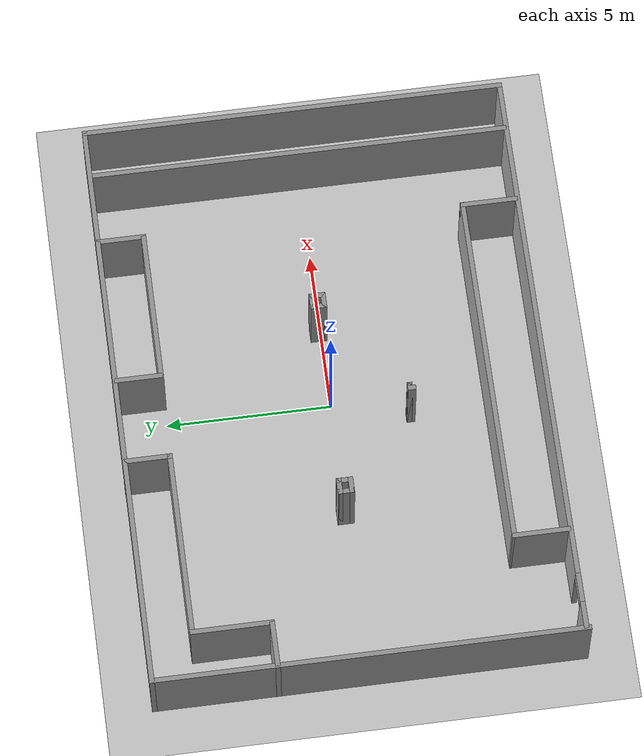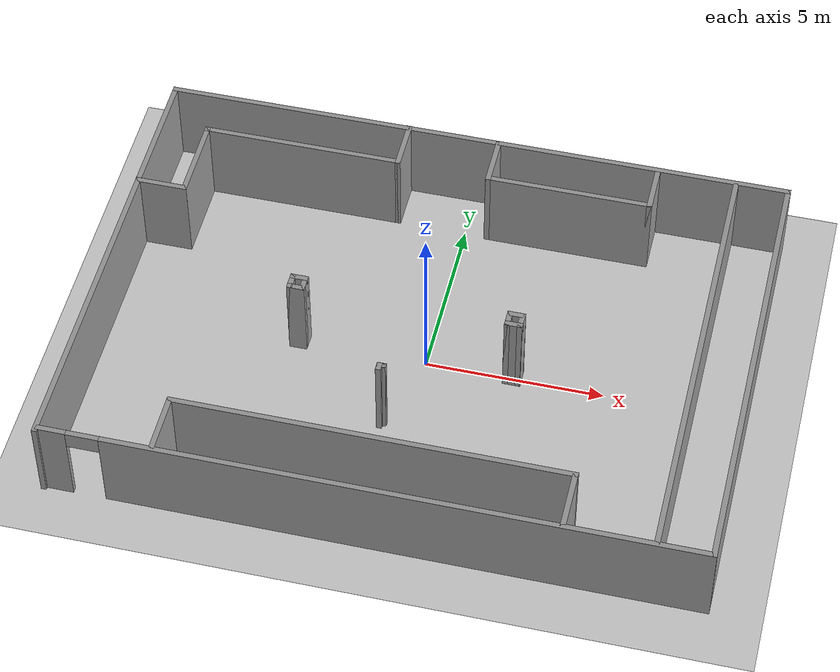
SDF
<sdf version="1.6">
 <world name="default">
  <light name="sun" type="directional">
   <pose>0 0 10 0 -0 0</pose>
   <diffuse>0.8 0.8 0.8 1</diffuse>
   <specular>0.2 0.2 0.2 1</specular>
   <attenuation>
    <range>1000</range>
    <constant>0.9</constant>
    <linear>0.01</linear>
    <quadratic>0.001</quadratic>
   </attenuation>
   <direction>-0.5 0.1 -0.9</direction>
  </light>
  <model name="ground_plane">
   <static>1</static>
   <link name="link">
    <collision name="collision">
     <geometry><plane><normal>0 0 1</normal><size>100 100</size></plane></geometry>
     <surface>
      <contact><collide_bitmask>65535</collide_bitmask></contact>
      <friction><ode><mu>100</mu><mu2>50</mu2></ode></friction>
     </surface>
    </collision>
    <visual name="visual">
     <cast_shadows>0</cast_shadows>
     <geometry><plane><normal>0 0 1</normal><size>100 100</size></plane></geometry>
     <material>
      <script><uri>file://media/materials/scripts/gazebo.material</uri><name>Gazebo/Grey</name></script>
     </material>
    </visual>
   </link>
  </model>
  <gravity>0 0 -9.8</gravity>
  <magnetic_field>6e-06 2.3e-05 -4.2e-05</magnetic_field>
  <atmosphere type="adiabatic"/>
  <physics name="default_physics" default="0" type="ode">
   <max_step_size>0.001</max_step_size>
   <real_time_factor>1</real_time_factor>
   <real_time_update_rate>1000</real_time_update_rate>
  </physics>
  <scene><ambient>0.4 0.4 0.4 1</ambient><background>0.7 0.7 0.7 1</background><shadows>1</shadows></scene>
  <spherical_coordinates>
   <surface_model>EARTH_WGS84</surface_model>
   <latitude_deg>0</latitude_deg>
   <longitude_deg>0</longitude_deg>
   <elevation>0</elevation>
   <heading_deg>0</heading_deg>
  </spherical_coordinates>
  <model name="garage">
   <pose>-0.016502 -0.011754 0 0 -0 0</pose>
   <link name="Wall_10">
    <collision name="Wall_10_Collision">
     <geometry><box><size>1.5 0.15 2.5</size></box></geometry>
     <pose>0 0 1.25 0 -0 0</pose>
    </collision>
    <visual name="Wall_10_Visual">
     <pose>0 0 1.25 0 -0 0</pose>
     <geometry><box><size>1.5 0.15 2.5</size></box></geometry>
     <material>
      <script><uri>file://media/materials/scripts/gazebo.material</uri><name>Gazebo/Grey</name></script>
      <ambient>1 1 1 1</ambient>
     </material>
     <meta><layer>0</layer></meta>
    </visual>
    <pose>-8.25188 2.72812 0 0 -0 0</pose>
   </link>
   <link name="Wall_11">
    <collision name="Wall_11_Collision">
     <geometry><box><size>2.5 0.15 2.5</size></box></geometry>
     <pose>0 0 1.25 0 -0 0</pose>
    </collision>
    <visual name="Wall_11_Visual">
     <pose>0 0 1.25 0 -0 0</pose>
     <geometry><box><size>2.5 0.15 2.5</size></box></geometry>
     <material>
      <script><uri>file://media/materials/scripts/gazebo.material</uri><name>Gazebo/Grey</name></script>
      <ambient>1 1 1 1</ambient>
     </material>
     <meta><layer>0</layer></meta>
    </visual>
    <pose>-7.57688 3.90312 0 0 -0 1.5708</pose>
   </link>
   <link name="Wall_12">
    <collision name="Wall_12_Collision">
     <geometry><box><size>5.75 0.15 2.5</size></box></geometry>
     <pose>0 0 1.25 0 -0 0</pose>
    </collision>
    <visual name="Wall_12_Visual">
     <pose>0 0 1.25 0 -0 0</pose>
     <geometry><box><size>5.75 0.15 2.5</size></box></geometry>
     <material>
      <script><uri>file://media/materials/scripts/gazebo.material</uri><name>Gazebo/Grey</name></script>
      <ambient>1 1 1 1</ambient>
     </material>
     <meta><layer>0</layer></meta>
    </visual>
    <pose>-4.77688 5.07812 0 0 -0 0</pose>
   </link>
   <link name="Wall_13">
    <collision name="Wall_13_Collision">
     <geometry><box><size>1.5 0.15 2.5</size></box></geometry>
     <pose>0 0 1.25 0 -0 0</pose>
    </collision>
    <visual name="Wall_13_Visual">
     <pose>0 0 1.25 0 -0 0</pose>
     <geometry><box><size>1.5 0.15 2.5</size></box></geometry>
     <material>
      <script><uri>file://media/materials/scripts/gazebo.material</uri><name>Gazebo/Grey</name></script>
      <ambient>1 1 1 1</ambient>
     </material>
     <meta><layer>0</layer></meta>
    </visual>
    <pose>-1.97687 5.75312 0 0 -0 1.5708</pose>
   </link>
   <link name="Wall_15">
    <collision name="Wall_15_Collision">
     <geometry><box><size>1.5 0.15 2.5</size></box></geometry>
     <pose>0 0 1.25 0 -0 0</pose>
    </collision>
    <visual name="Wall_15_Visual">
     <pose>0 0 1.25 0 -0 0</pose>
     <geometry><box><size>1.5 0.15 2.5</size></box></geometry>
     <material>
      <script><uri>file://media/materials/scripts/gazebo.material</uri><name>Gazebo/Grey</name></script>
      <ambient>1 1 1 1</ambient>
     </material>
     <meta><layer>0</layer></meta>
    </visual>
    <pose>0.641749 5.71171 0 0 -0 -1.5708</pose>
   </link>
   <link name="Wall_16">
    <collision name="Wall_16_Collision">
     <geometry><box><size>4.75 0.15 2.5</size></box></geometry>
     <pose>0 0 1.25 0 -0 0</pose>
    </collision>
    <visual name="Wall_16_Visual">
     <pose>0 0 1.25 0 -0 0</pose>
     <geometry><box><size>4.75 0.15 2.5</size></box></geometry>
     <material>
      <script><uri>file://media/materials/scripts/gazebo.material</uri><name>Gazebo/Grey</name></script>
      <ambient>1 1 1 1</ambient>
     </material>
     <meta><layer>0</layer></meta>
    </visual>
    <pose>2.94175 5.03671 0 0 -0 0</pose>
   </link>
   <link name="Wall_19">
    <collision name="Wall_19_Collision">
     <geometry><box><size>1.5 0.15 2.5</size></box></geometry>
     <pose>0 0 1.25 0 -0 0</pose>
    </collision>
    <visual name="Wall_19_Visual">
     <pose>0 0 1.25 0 -0 0</pose>
     <geometry><box><size>1.5 0.15 2.5</size></box></geometry>
     <material>
      <script><uri>file://media/materials/scripts/gazebo.material</uri><name>Gazebo/Grey</name></script>
      <ambient>1 1 1 1</ambient>
     </material>
     <meta><layer>0</layer></meta>
    </visual>
    <pose>5.24175 5.71171 0 0 -0 1.5708</pose>
   </link>
   <link name="Wall_21">
    <collision name="Wall_21_Collision">
     <geometry><box><size>12.75 0.15 2.5</size></box></geometry>
     <pose>0 0 1.25 0 -0 0</pose>
    </collision>
    <visual name="Wall_21_Visual">
     <pose>0 0 1.25 0 -0 0</pose>
     <geometry><box><size>12.75 0.15 2.5</size></box></geometry>
     <material>
      <script><uri>file://media/materials/scripts/gazebo.material</uri><name>Gazebo/Grey</name></script>
      <ambient>1 1 1 1</ambient>
     </material>
     <meta><layer>0</layer></meta>
    </visual>
    <pose>7.46643 0.016349 0 0 -0 -1.5708</pose>
   </link>
   <link name="Wall_23">
    <collision name="Wall_23_Collision">
     <geometry><box><size>1.75 0.15 2.5</size></box></geometry>
     <pose>0 0 1.25 0 -0 0</pose>
    </collision>
    <visual name="Wall_23_Visual">
     <pose>0 0 1.25 0 -0 0</pose>
     <geometry><box><size>1.75 0.15 2.5</size></box></geometry>
     <material>
      <script><uri>file://media/materials/scripts/gazebo.material</uri><name>Gazebo/Grey</name></script>
      <ambient>1 1 1 1</ambient>
     </material>
     <meta><layer>0</layer></meta>
    </visual>
    <pose>-5.79596 -5.47765 0 0 -0 1.5708</pose>
   </link>
   <link name="Wall_24">
    <collision name="Wall_24_Collision">
     <geometry><box><size>11 0.15 2.5</size></box></geometry>
     <pose>0 0 1.25 0 -0 0</pose>
    </collision>
    <visual name="Wall_24_Visual">
     <pose>0 0 1.25 0 -0 0</pose>
     <geometry><box><size>11 0.15 2.5</size></box></geometry>
     <material>
      <script><uri>file://media/materials/scripts/gazebo.material</uri><name>Gazebo/Grey</name></script>
      <ambient>1 1 1 1</ambient>
     </material>
     <meta><layer>0</layer></meta>
    </visual>
    <pose>-0.370965 -4.67765 0 0 -0 0</pose>
   </link>
   <link name="Wall_25">
    <collision name="Wall_25_Collision">
     <geometry><box><size>1.75 0.15 2.5</size></box></geometry>
     <pose>0 0 1.25 0 -0 0</pose>
    </collision>
    <visual name="Wall_25_Visual">
     <pose>0 0 1.25 0 -0 0</pose>
     <geometry><box><size>1.75 0.15 2.5</size></box></geometry>
     <material>
      <script><uri>file://media/materials/scripts/gazebo.material</uri><name>Gazebo/Grey</name></script>
      <ambient>1 1 1 1</ambient>
     </material>
     <meta><layer>0</layer></meta>
    </visual>
    <pose>5.05403 -5.47765 0 0 -0 -1.5708</pose>
   </link>
   <link name="Wall_3">
    <collision name="Wall_3_Collision">
     <geometry><box><size>12.9259 0.15 2.5</size></box></geometry>
     <pose>0 0 1.25 0 -0 0</pose>
    </collision>
    <visual name="Wall_3_Visual">
     <pose>0 0 1.25 0 -0 0</pose>
     <geometry><box><size>12.9259 0.15 2.5</size></box></geometry>
     <material>
      <script><uri>file://media/materials/scripts/gazebo.material</uri><name>Gazebo/Grey</name></script>
      <ambient>1 1 1 1</ambient>
     </material>
     <meta><layer>0</layer></meta>
    </visual>
    <pose>8.92687 0.033939 0 0 -0 -1.5708</pose>
   </link>
   <link name="Wall_4">
    <pose>0.001874 -6.35401 0 0 -0 3.14159</pose>
    <visual name="Wall_4_Visual_0">
     <pose>-0.893843 0 1.25 0 -0 0</pose>
     <geometry><box><size>16.2123 0.15 2.5</size></box></geometry>
     <material>
      <script><uri>file://media/materials/scripts/gazebo.material</uri><name>Gazebo/Grey</name></script>
      <ambient>1 1 1 1</ambient>
     </material>
     <meta><layer>0</layer></meta>
    </visual>
    <collision name="Wall_4_Collision_0">
     <geometry><box><size>16.2123 0.15 2.5</size></box></geometry>
     <pose>-0.893843 0 1.25 0 -0 0</pose>
    </collision>
    <visual name="Wall_4_Visual_1">
     <pose>8.55616 0 1.25 0 -0 0</pose>
     <geometry><box><size>0.887687 0.15 2.5</size></box></geometry>
     <material>
      <script><uri>file://media/materials/scripts/gazebo.material</uri><name>Gazebo/Grey</name></script>
      <ambient>1 1 1 1</ambient>
     </material>
     <meta><layer>0</layer></meta>
    </visual>
    <collision name="Wall_4_Collision_1">
     <geometry><box><size>0.887687 0.15 2.5</size></box></geometry>
     <pose>8.55616 0 1.25 0 -0 0</pose>
    </collision>
    <visual name="Wall_4_Visual_2">
     <pose>7.66231 0 2.25 0 -0 0</pose>
     <geometry><box><size>0.9 0.15 0.5</size></box></geometry>
     <material>
      <script><uri>file://media/materials/scripts/gazebo.material</uri><name>Gazebo/Grey</name></script>
      <ambient>1 1 1 1</ambient>
     </material>
     <meta><layer>0</layer></meta>
    </visual>
    <collision name="Wall_4_Collision_2">
     <geometry><box><size>0.9 0.15 0.5</size></box></geometry>
     <pose>7.66231 0 2.25 0 -0 0</pose>
    </collision>
   </link>
   <link name="Wall_7">
    <collision name="Wall_7_Collision">
     <geometry><box><size>18 0.15 2.5</size></box></geometry>
     <pose>0 0 1.25 0 -0 0</pose>
    </collision>
    <visual name="Wall_7_Visual">
     <pose>0 0 1.25 0 -0 0</pose>
     <geometry><box><size>18 0.15 2.5</size></box></geometry>
     <material>
      <script><uri>file://media/materials/scripts/gazebo.material</uri><name>Gazebo/Grey</name></script>
      <ambient>1 1 1 1</ambient>
     </material>
     <meta><layer>0</layer></meta>
    </visual>
    <pose>0.001874 6.42189 0 0 -0 3.14159</pose>
   </link>
   <link name="Wall_8">
    <collision name="Wall_8_Collision">
     <geometry><box><size>13 0.15 2.5</size></box></geometry>
     <pose>0 0 1.25 0 -0 0</pose>
    </collision>
    <visual name="Wall_8_Visual">
     <pose>0 0 1.25 0 -0 0</pose>
     <geometry><box><size>13 0.15 2.5</size></box></geometry>
     <material>
      <script><uri>file://media/materials/scripts/gazebo.material</uri><name>Gazebo/Grey</name></script>
      <ambient>1 1 1 1</ambient>
     </material>
     <meta><layer>0</layer></meta>
    </visual>
    <pose>-8.92313 -0.003114 0 0 -0 -1.5708</pose>
   </link>
   <static>1</static>
  </model>
  <model name="garage2">
   <pose>-0.576863 -1.07175 0 0 -0 0</pose>
   <link name="Wall_11">
    <collision name="Wall_11_Collision">
     <geometry><box><size>0.25 0.15 2.5</size></box></geometry>
     <pose>0 0 1.25 0 -0 0</pose>
    </collision>
    <visual name="Wall_11_Visual">
     <pose>0 0 1.25 0 -0 0</pose>
     <geometry><box><size>0.25 0.15 2.5</size></box></geometry>
     <material>
      <script><uri>file://media/materials/scripts/gazebo.material</uri><name>Gazebo/Grey</name></script>
      <ambient>1 1 1 1</ambient>
     </material>
     <meta><layer>0</layer></meta>
    </visual>
    <pose>-0.155 -1.27 0 0 -0 1.5708</pose>
   </link>
   <link name="Wall_12">
    <collision name="Wall_12_Collision">
     <geometry><box><size>0.25 0.15 2.5</size></box></geometry>
     <pose>0 0 1.25 0 -0 0</pose>
    </collision>
    <visual name="Wall_12_Visual">
     <pose>0 0 1.25 0 -0 0</pose>
     <geometry><box><size>0.25 0.15 2.5</size></box></geometry>
     <material>
      <script><uri>file://media/materials/scripts/gazebo.material</uri><name>Gazebo/Grey</name></script>
      <ambient>1 1 1 1</ambient>
     </material>
     <meta><layer>0</layer></meta>
    </visual>
    <pose>-0.105 -1.22 0 0 -0 0</pose>
   </link>
   <link name="Wall_13">
    <collision name="Wall_13_Collision">
     <geometry><box><size>0.25 0.15 2.5</size></box></geometry>
     <pose>0 0 1.25 0 -0 0</pose>
    </collision>
    <visual name="Wall_13_Visual">
     <pose>0 0 1.25 0 -0 0</pose>
     <geometry><box><size>0.25 0.15 2.5</size></box></geometry>
     <material>
      <script><uri>file://media/materials/scripts/gazebo.material</uri><name>Gazebo/Grey</name></script>
      <ambient>1 1 1 1</ambient>
     </material>
     <meta><layer>0</layer></meta>
    </visual>
    <pose>-0.105 -1.22 0 0 -0 3.14159</pose>
   </link>
   <link name="Wall_15">
    <collision name="Wall_15_Collision">
     <geometry><box><size>0.5 0.15 2.5</size></box></geometry>
     <pose>0 0 1.25 0 -0 0</pose>
    </collision>
    <visual name="Wall_15_Visual">
     <pose>0 0 1.25 0 -0 0</pose>
     <geometry><box><size>0.5 0.15 2.5</size></box></geometry>
     <material>
      <script><uri>file://media/materials/scripts/gazebo.material</uri><name>Gazebo/Grey</name></script>
      <ambient>1 1 1 1</ambient>
     </material>
     <meta><layer>0</layer></meta>
    </visual>
    <pose>2.845 1.145 0 0 -0 -1.5708</pose>
   </link>
   <link name="Wall_16">
    <collision name="Wall_16_Collision">
     <geometry><box><size>0.5 0.15 2.5</size></box></geometry>
     <pose>0 0 1.25 0 -0 0</pose>
    </collision>
    <visual name="Wall_16_Visual">
     <pose>0 0 1.25 0 -0 0</pose>
     <geometry><box><size>0.5 0.15 2.5</size></box></geometry>
     <material>
      <script><uri>file://media/materials/scripts/gazebo.material</uri><name>Gazebo/Grey</name></script>
      <ambient>1 1 1 1</ambient>
     </material>
     <meta><layer>0</layer></meta>
    </visual>
    <pose>3.02 0.97 0 0 -0 0</pose>
   </link>
   <link name="Wall_17">
    <collision name="Wall_17_Collision">
     <geometry><box><size>0.5 0.15 2.5</size></box></geometry>
     <pose>0 0 1.25 0 -0 0</pose>
    </collision>
    <visual name="Wall_17_Visual">
     <pose>0 0 1.25 0 -0 0</pose>
     <geometry><box><size>0.5 0.15 2.5</size></box></geometry>
     <material>
      <script><uri>file://media/materials/scripts/gazebo.material</uri><name>Gazebo/Grey</name></script>
      <ambient>1 1 1 1</ambient>
     </material>
     <meta><layer>0</layer></meta>
    </visual>
    <pose>3.195 1.145 0 0 -0 1.5708</pose>
   </link>
   <link name="Wall_18">
    <collision name="Wall_18_Collision">
     <geometry><box><size>0.5 0.15 2.5</size></box></geometry>
     <pose>0 0 1.25 0 -0 0</pose>
    </collision>
    <visual name="Wall_18_Visual">
     <pose>0 0 1.25 0 -0 0</pose>
     <geometry><box><size>0.5 0.15 2.5</size></box></geometry>
     <material>
      <script><uri>file://media/materials/scripts/gazebo.material</uri><name>Gazebo/Grey</name></script>
      <ambient>1 1 1 1</ambient>
     </material>
     <meta><layer>0</layer></meta>
    </visual>
    <pose>3.02 1.32 0 0 -0 3.14159</pose>
   </link>
   <link name="Wall_5">
    <collision name="Wall_5_Collision">
     <geometry><box><size>0.5 0.15 2.5</size></box></geometry>
     <pose>0 0 1.25 0 -0 0</pose>
    </collision>
    <visual name="Wall_5_Visual">
     <pose>0 0 1.25 0 -0 0</pose>
     <geometry><box><size>0.5 0.15 2.5</size></box></geometry>
     <material>
      <script><uri>file://media/materials/scripts/gazebo.material</uri><name>Gazebo/Grey</name></script>
      <ambient>1 1 1 1</ambient>
     </material>
     <meta><layer>0</layer></meta>
    </visual>
    <pose>-3.195 1.105 0 0 -0 1.5708</pose>
   </link>
   <link name="Wall_6">
    <collision name="Wall_6_Collision">
     <geometry><box><size>0.5 0.15 2.5</size></box></geometry>
     <pose>0 0 1.25 0 -0 0</pose>
    </collision>
    <visual name="Wall_6_Visual">
     <pose>0 0 1.25 0 -0 0</pose>
     <geometry><box><size>0.5 0.15 2.5</size></box></geometry>
     <material>
      <script><uri>file://media/materials/scripts/gazebo.material</uri><name>Gazebo/Grey</name></script>
      <ambient>1 1 1 1</ambient>
     </material>
     <meta><layer>0</layer></meta>
    </visual>
    <pose>-3.02 1.28 0 0 -0 0</pose>
   </link>
   <link name="Wall_7">
    <collision name="Wall_7_Collision">
     <geometry><box><size>0.5 0.15 2.5</size></box></geometry>
     <pose>0 0 1.25 0 -0 0</pose>
    </collision>
    <visual name="Wall_7_Visual">
     <pose>0 0 1.25 0 -0 0</pose>
     <geometry><box><size>0.5 0.15 2.5</size></box></geometry>
     <material>
      <script><uri>file://media/materials/scripts/gazebo.material</uri><name>Gazebo/Grey</name></script>
      <ambient>1 1 1 1</ambient>
     </material>
     <meta><layer>0</layer></meta>
    </visual>
    <pose>-2.845 1.105 0 0 -0 -1.5708</pose>
   </link>
   <link name="Wall_8">
    <collision name="Wall_8_Collision">
     <geometry><box><size>0.5 0.15 2.5</size></box></geometry>
     <pose>0 0 1.25 0 -0 0</pose>
    </collision>
    <visual name="Wall_8_Visual">
     <pose>0 0 1.25 0 -0 0</pose>
     <geometry><box><size>0.5 0.15 2.5</size></box></geometry>
     <material>
      <script><uri>file://media/materials/scripts/gazebo.material</uri><name>Gazebo/Grey</name></script>
      <ambient>1 1 1 1</ambient>
     </material>
     <meta><layer>0</layer></meta>
    </visual>
    <pose>-3.02 0.93 0 0 -0 3.14159</pose>
   </link>
   <static>1</static>
  </model>
 </world>
</sdf>
